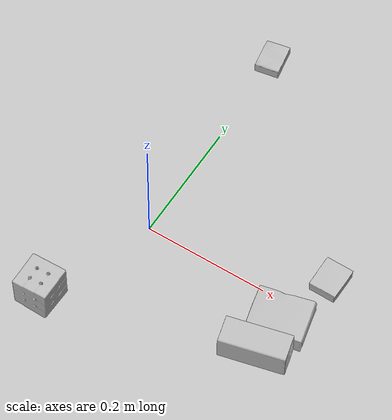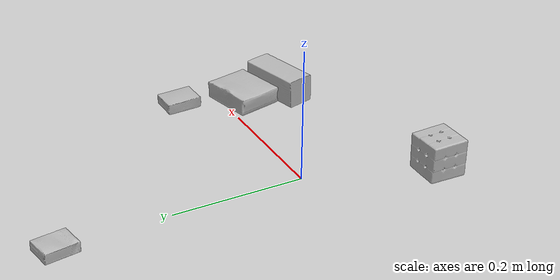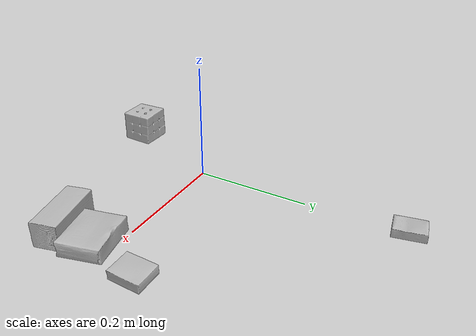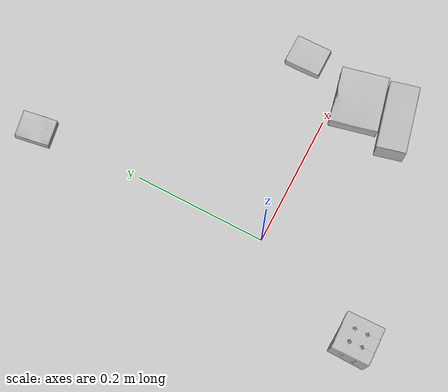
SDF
<sdf version="1.4">
  <world name="default">
    <light name="light1" type="point">
      <pose>0 0 1 0 0 0</pose>
      <diffuse>3 3 3 1</diffuse>
      <specular>3 3 3 1</specular>
    </light>
    <light name="light2" type="point">
      <pose>0 0.5 2 0 0 0</pose>
      <diffuse>1 1 1 1</diffuse>
      <specular>1 1 1 1</specular>
    </light>
    <light name="light3" type="point">
      <pose>0 0.5 2 0 0 0</pose>
      <diffuse>3 3 3 1</diffuse>
      <specular>3 3 3 1</specular>
    </light>
    <scene>
      <ambient>0.7 0.7 0.7</ambient>
    </scene>
    <model name="box1">
      <link name="link_box1">
        <collision name="default">
          <geometry>
            <mesh>
              <uri>model://rubiks_cube/collision_meshes/collision.obj</uri>
              <scale>1.0 1.0 1.0</scale>
            </mesh>
          </geometry>
          <surface>
            <friction>
              <ode>
                <mu>0.5</mu>
                <mu2>0.5</mu2>
              </ode>
            </friction>
          <contact>
        <ode>
            <max_vel>0</max_vel>
            <min_depth>0.0001</min_depth>
            <kp>1e8</kp>
        </ode>
    </contact></surface>
        </collision>
        <visual name="default">
          <geometry>
            <mesh>
              <uri>model://rubiks_cube/visual_meshes/visual.dae</uri>
              <scale>1.0 1.0 1.0</scale>
            </mesh>
          </geometry>
        </visual>
        <inertial>
          <mass>0.16542086005210876</mass>
          <pose>2.6721041649580002e-05 5.256967051536776e-05 -7.264316536748083e-06 -0.054673137900176624 -0.09813866632394339 -0.03445580911338559</pose>
          <inertia>
            <ixx>9.140613e-05</ixx>
            <iyy>9.097988e-05</iyy>
            <izz>9.216359e-05</izz>
            <ixy>0</ixy>
            <ixz>0</ixz>
            <iyz>0</iyz>
          </inertia>
        </inertial>
      </link>
      <pose>-0.07055819034576416 -0.18327198922634125 0.028678979724645615 -2.6595660184396674e-06 -8.536591109190331e-07 -3.1223795843448134</pose>
    </model>
    <model name="box2">
      <link name="link_box2">
        <collision name="default">
          <geometry>
            <mesh>
              <uri>model://cracker_box/collision_meshes/collision.obj</uri>
              <scale>0.25 0.25 0.25</scale>
            </mesh>
          </geometry>
          <surface>
            <friction>
              <ode>
                <mu>0.5</mu>
                <mu2>0.5</mu2>
              </ode>
            </friction>
          <contact>
        <ode>
            <max_vel>0</max_vel>
            <min_depth>0.0001</min_depth>
            <kp>1e8</kp>
        </ode>
    </contact></surface>
        </collision>
        <visual name="default">
          <geometry>
            <mesh>
              <uri>model://cracker_box/visual_meshes/visual.dae</uri>
              <scale>0.25 0.25 0.25</scale>
            </mesh>
          </geometry>
        </visual>
        <inertial>
          <mass>0.04381135478615761</mass>
          <pose>0.00023660462466068566 6.358561222441494e-05 -0.0004257383698131889 -0.00031620747829542317 -0.011106489600678707 0.002546794302661479</pose>
          <inertia>
            <ixx>6.9647826e-06</ixx>
            <iyy>1.1500225e-05</iyy>
            <izz>1.6411877e-05</izz>
            <ixy>0</ixy>
            <ixz>0</ixz>
            <iyz>0</iyz>
          </inertia>
        </inertial>
      </link>
      <pose>-0.006829048041254282 0.367449015378952 0.009120451286435127 -0.011787967247965095 -0.007367213080526664 1.7332423062613882</pose>
    </model>
    <model name="box3">
      <link name="link_box3">
        <collision name="default">
          <geometry>
            <mesh>
              <uri>model://gelatin_box/collision_meshes/collision.obj</uri>
              <scale>1.0 1.0 1.0</scale>
            </mesh>
          </geometry>
          <surface>
            <friction>
              <ode>
                <mu>0.5</mu>
                <mu2>0.5</mu2>
              </ode>
            </friction>
          <contact>
        <ode>
            <max_vel>0</max_vel>
            <min_depth>0.0001</min_depth>
            <kp>1e8</kp>
        </ode>
    </contact></surface>
        </collision>
        <visual name="default">
          <geometry>
            <mesh>
              <uri>model://gelatin_box/visual_meshes/visual.dae</uri>
              <scale>1.0 1.0 1.0</scale>
            </mesh>
          </geometry>
        </visual>
        <inertial>
          <mass>0.23367169499397278</mass>
          <pose>0.0004319618456065655 0.00011156871914863586 -0.0003640321083366871 -0.0010503719733775277 -0.004755817758083372 0.016440561333906818</pose>
          <inertia>
            <ixx>0.00016495313</ixx>
            <iyy>0.00011782518</iyy>
            <izz>0.00025109548</izz>
            <ixy>0</ixy>
            <ixz>0</ixz>
            <iyz>0</iyz>
          </inertia>
        </inertial>
      </link>
      <pose>0.24926619231700897 -0.03331289440393448 0.015168311074376106 0.005597378456037994 -0.007304513976788862 1.790970467878782</pose>
    </model>
    <model name="box4">
      <link name="link_box4">
        <collision name="default">
          <geometry>
            <mesh>
              <uri>model://wood_block/collision_meshes/collision.obj</uri>
              <scale>0.5 0.5 0.5</scale>
            </mesh>
          </geometry>
          <surface>
            <friction>
              <ode>
                <mu>0.5</mu>
                <mu2>0.5</mu2>
              </ode>
            </friction>
          <contact>
        <ode>
            <max_vel>0</max_vel>
            <min_depth>0.0001</min_depth>
            <kp>1e8</kp>
        </ode>
    </contact></surface>
        </collision>
        <visual name="default">
          <geometry>
            <mesh>
              <uri>model://wood_block/visual_meshes/visual.dae</uri>
              <scale>0.5 0.5 0.5</scale>
            </mesh>
          </geometry>
        </visual>
        <inertial>
          <mass>0.20833587646484375</mass>
          <pose>-2.9066577553749084e-06 -0.000285404734313488 0.00013204291462898254 -0.05220975529367638 -0.0051926946165042134 -0.0068613779519224715</pose>
          <inertia>
            <ixx>6.9696216e-05</ixx>
            <iyy>0.0002201704</iyy>
            <izz>0.00021934687</izz>
            <ixy>0</ixy>
            <ixz>0</ixz>
            <iyz>0</iyz>
          </inertia>
        </inertial>
      </link>
      <pose>0.24455855786800385 -0.09510768949985504 0.02262927033007145 -0.005208444830997781 0.005718713245172427 0.2443031536979494</pose>
    </model>
    <model name="box5">
      <link name="link_box5">
        <collision name="default">
          <geometry>
            <mesh>
              <uri>model://pudding_box/collision_meshes/collision.obj</uri>
              <scale>0.5 0.5 0.5</scale>
            </mesh>
          </geometry>
          <surface>
            <friction>
              <ode>
                <mu>0.5</mu>
                <mu2>0.5</mu2>
              </ode>
            </friction>
          <contact>
        <ode>
            <max_vel>0</max_vel>
            <min_depth>0.0001</min_depth>
            <kp>1e8</kp>
        </ode>
    </contact></surface>
        </collision>
        <visual name="default">
          <geometry>
            <mesh>
              <uri>model://pudding_box/visual_meshes/visual.dae</uri>
              <scale>0.5 0.5 0.5</scale>
            </mesh>
          </geometry>
        </visual>
        <inertial>
          <mass>0.032720133662223816</mass>
          <pose>0.00024474109522998333 0.0004033942532259971 -0.0002594413817860186 0.005213102275410761 -0.0066037963999523224 0.020079827026921356</pose>
          <inertia>
            <ixx>9.2471055e-06</ixx>
            <iyy>6.221519e-06</iyy>
            <izz>1.3655769e-05</izz>
            <ixy>0</ixy>
            <ixz>0</ixz>
            <iyz>0</iyz>
          </inertia>
        </inertial>
      </link>
      <pose>0.2776583433151245 0.06485354900360107 0.009862898848950863 0.02234966459260106 -0.011390924113207699 -3.141417959873327</pose>
    </model>
  <physics type="ode">
      <max_contacts>50</max_contacts>
      <ode>
        <solver>
          <type>quick</type>
          <iters>75</iters>
        </solver>
        <constraints>
          <contact_max_correcting_vel>0</contact_max_correcting_vel>
          <contact_surface_layer>0</contact_surface_layer>
        </constraints>
      </ode>
    </physics></world>
</sdf>
